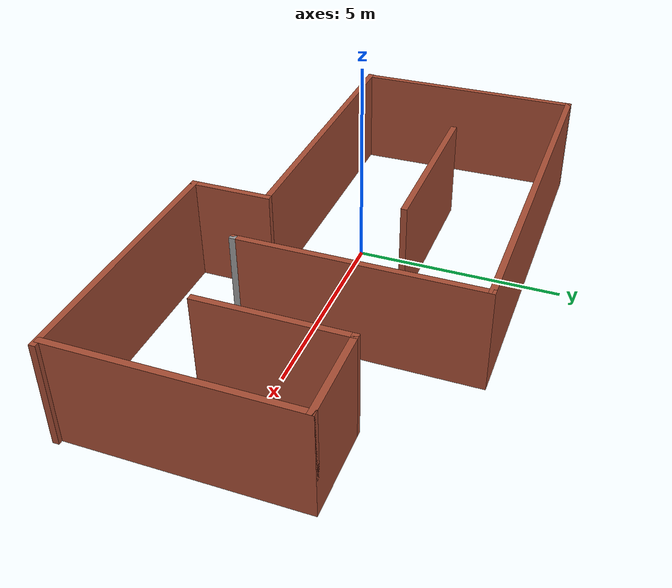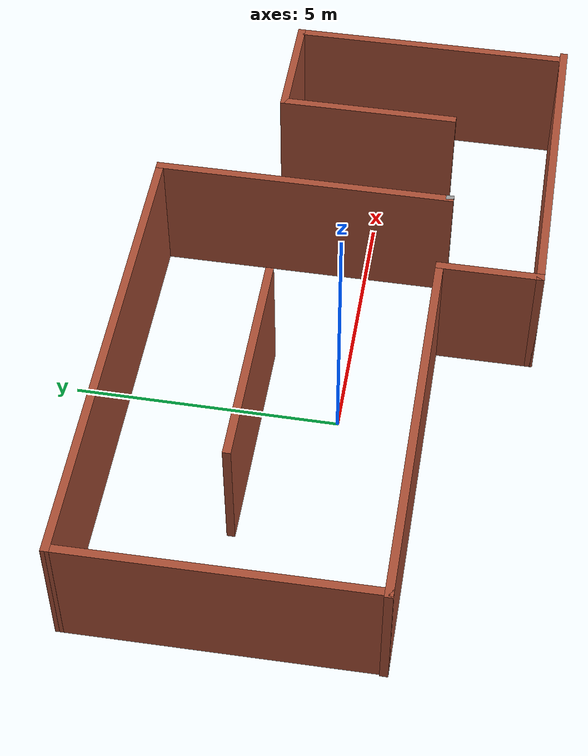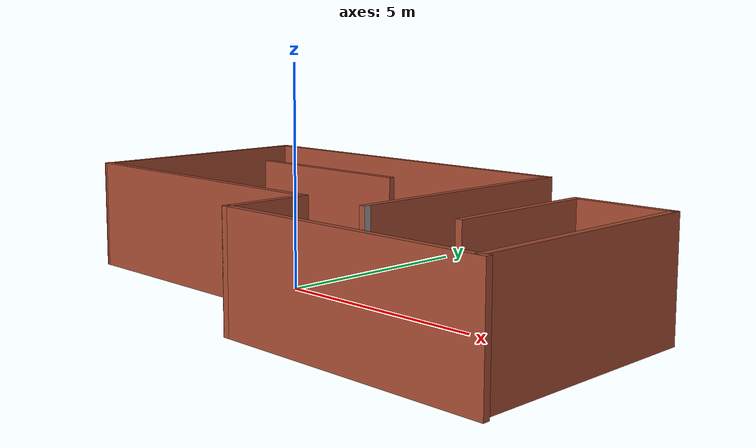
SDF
<?xml version='1.0'?>
<sdf version='1.6'>
  <model name='indoors'>
    <pose frame=''>1.51808 0.323454 0 0 -0 0</pose>
    <link name='Wall_10'>
      <collision name='Wall_10_Collision'>
        <geometry>
          <box>
            <size>2 0.15 2.5</size>
          </box>
        </geometry>
        <pose frame=''>0 0 1.25 0 -0 0</pose>
      </collision>
      <visual name='Wall_10_Visual'>
        <pose frame=''>0 0 1.25 0 -0 0</pose>
        <geometry>
          <box>
            <size>2 0.15 2.5</size>
          </box>
        </geometry>
        <material>
          <script>
            <uri>file://media/materials/scripts/gazebo.material</uri>
            <name>Gazebo/Bricks</name>
          </script>
          <ambient>1 1 1 1</ambient>
        </material>
      </visual>
      <pose frame=''>0.513654 -2.80029 0 0 0 -1.5708</pose>
    </link>
    <link name='Wall_11'>
      <collision name='Wall_11_Collision'>
        <geometry>
          <box>
            <size>6.25 0.15 2.5</size>
          </box>
        </geometry>
        <pose frame=''>0 0 1.25 0 -0 0</pose>
      </collision>
      <visual name='Wall_11_Visual'>
        <pose frame=''>0 0 1.25 0 -0 0</pose>
        <geometry>
          <box>
            <size>6.25 0.15 2.5</size>
          </box>
        </geometry>
        <material>
          <script>
            <uri>file://media/materials/scripts/gazebo.material</uri>
            <name>Gazebo/Bricks</name>
          </script>
          <ambient>1 1 1 1</ambient>
        </material>
      </visual>
      <pose frame=''>3.56365 -3.72529 0 0 -0 0</pose>
    </link>
    <link name='Wall_13'>
      <collision name='Wall_13_Collision'>
        <geometry>
          <box>
            <size>3.5 0.15 2.5</size>
          </box>
        </geometry>
        <pose frame=''>0 0 1.25 0 -0 0</pose>
      </collision>
      <visual name='Wall_13_Visual'>
        <pose frame=''>0 0 1.25 0 -0 0</pose>
        <geometry>
          <box>
            <size>3.5 0.15 2.5</size>
          </box>
        </geometry>
        <material>
          <script>
            <uri>file://media/materials/scripts/gazebo.material</uri>
            <name>Gazebo/Bricks</name>
          </script>
          <ambient>1 1 1 1</ambient>
        </material>
      </visual>
      <pose frame=''>4.40974 -0.009095 0 0 -0 1.5708</pose>
    </link>
    <link name='Wall_14'>
      <collision name='Wall_14_Collision'>
        <geometry>
          <box>
            <size>2.25 0.15 2.5</size>
          </box>
        </geometry>
        <pose frame=''>0 0 1.25 0 -0 0</pose>
      </collision>
      <visual name='Wall_14_Visual'>
        <pose frame=''>0 0 1.25 0 -0 0</pose>
        <geometry>
          <box>
            <size>2.25 0.15 2.5</size>
          </box>
        </geometry>
        <material>
          <script>
            <uri>file://media/materials/scripts/gazebo.material</uri>
            <name>Gazebo/Bricks</name>
          </script>
          <ambient>1 1 1 1</ambient>
        </material>
      </visual>
      <pose frame=''>5.45974 1.6659 0 0 -0 0</pose>
    </link>
    <link name='Wall_15'>
      <collision name='Wall_15_Collision'>
        <geometry>
          <box>
            <size>5.5 0.15 2.5</size>
          </box>
        </geometry>
        <pose frame=''>0 0 1.25 0 -0 0</pose>
      </collision>
      <visual name='Wall_15_Visual'>
        <pose frame=''>0 0 1.25 0 -0 0</pose>
        <geometry>
          <box>
            <size>5.5 0.15 2.5</size>
          </box>
        </geometry>
        <material>
          <script>
            <uri>file://media/materials/scripts/gazebo.material</uri>
            <name>Gazebo/Bricks</name>
          </script>
          <ambient>1 1 1 1</ambient>
        </material>
      </visual>
      <pose frame=''>6.50974 -1.0091 0 0 0 -1.5708</pose>
    </link>
    <link name='Wall_2'>
      <collision name='Wall_2_Collision'>
        <geometry>
          <box>
            <size>4.25 0.15 2.5</size>
          </box>
        </geometry>
        <pose frame=''>0 0 1.25 0 -0 0</pose>
      </collision>
      <visual name='Wall_2_Visual'>
        <pose frame=''>0 0 1.25 0 -0 0</pose>
        <geometry>
          <box>
            <size>4.25 0.15 2.5</size>
          </box>
        </geometry>
        <material>
          <script>
            <uri>file://media/materials/scripts/gazebo.material</uri>
            <name>Gazebo/Bricks</name>
          </script>
          <ambient>1 1 1 1</ambient>
        </material>
      </visual>
      <pose frame=''>-2.16935 1.18751 0 0 -0 0</pose>
    </link>
    <link name='Wall_4'>
      <collision name='Wall_4_Collision'>
        <geometry>
          <box>
            <size>7.25 0.15 2.5</size>
          </box>
        </geometry>
        <pose frame=''>0 0 1.25 0 -0 0</pose>
      </collision>
      <visual name='Wall_4_Visual'>
        <pose frame=''>0 0 1.25 0 -0 0</pose>
        <geometry>
          <box>
            <size>7.25 0.15 2.5</size>
          </box>
        </geometry>
        <material>
          <script>
            <uri>file://media/materials/scripts/gazebo.material</uri>
            <name>Gazebo/Bricks</name>
          </script>
          <ambient>1 1 1 1</ambient>
        </material>
      </visual>
      <pose frame=''>-3.03635 -1.87529 0 0 -0 3.14159</pose>
    </link>
    <link name='Wall_5'>
      <collision name='Wall_5_Collision'>
        <geometry>
          <box>
            <size>5.75 0.15 2.5</size>
          </box>
        </geometry>
        <pose frame=''>0 0 1.25 0 -0 0</pose>
      </collision>
      <visual name='Wall_5_Visual'>
        <pose frame=''>0 0 1.25 0 -0 0</pose>
        <geometry>
          <box>
            <size>5.75 0.15 2.5</size>
          </box>
        </geometry>
        <material>
          <script>
            <uri>file://media/materials/scripts/gazebo.material</uri>
            <name>Gazebo/Bricks</name>
          </script>
          <ambient>1 1 1 1</ambient>
        </material>
      </visual>
      <pose frame=''>-6.58635 0.924709 0 0 -0 1.5803</pose>
    </link>
    <link name='Wall_6'>
      <collision name='Wall_6_Collision'>
        <geometry>
          <box>
            <size>9 0.15 2.5</size>
          </box>
        </geometry>
        <pose frame=''>0 0 1.25 0 -0 0</pose>
      </collision>
      <visual name='Wall_6_Visual'>
        <pose frame=''>0 0 1.25 0 -0 0</pose>
        <geometry>
          <box>
            <size>9 0.15 2.5</size>
          </box>
        </geometry>
        <material>
          <script>
            <uri>file://media/materials/scripts/gazebo.material</uri>
            <name>Gazebo/Bricks</name>
          </script>
          <ambient>1 1 1 1</ambient>
        </material>
      </visual>
      <pose frame=''>-2.18795 3.72471 0 0 -0 0</pose>
    </link>
    <link name='Wall_7'>
      <collision name='Wall_7_Collision'>
        <geometry>
          <box>
            <size>5.75 0.15 2.5</size>
          </box>
        </geometry>
        <pose frame=''>0 0 1.25 0 -0 0</pose>
      </collision>
      <visual name='Wall_7_Visual'>
        <pose frame=''>0 0 1.25 0 -0 0</pose>
        <geometry>
          <box>
            <size>5.75 0.15 2.5</size>
          </box>
        </geometry>
        <material>
          <script>
            <uri>file://media/materials/scripts/gazebo.material</uri>
            <name>Gazebo/Bricks</name>
          </script>
          <ambient>1 1 1 1</ambient>
        </material>
      </visual>
      <pose frame=''>2.23705 0.924709 0 0 0 -1.5708</pose>
    </link>
    <link name='Wall_8'>
      <collision name='Wall_8_Collision'>
        <geometry>
          <box>
            <size>0.15 0.15 2.5</size>
          </box>
        </geometry>
        <pose frame=''>0 0 1.25 0 -0 0</pose>
      </collision>
      <visual name='Wall_8_Visual'>
        <pose frame=''>0 0 1.25 0 -0 0</pose>
        <geometry>
          <box>
            <size>0.15 0.15 2.5</size>
          </box>
        </geometry>
        <material>
          <script>
            <uri>file://media/materials/scripts/gazebo.material</uri>
            <name>Gazebo/Grey</name>
          </script>
          <ambient>1 1 1 1</ambient>
        </material>
      </visual>
      <pose frame=''>2.23705 -1.87529 0 0 -0 0</pose>
    </link>
    <static>1</static>
  </model>
</sdf>
